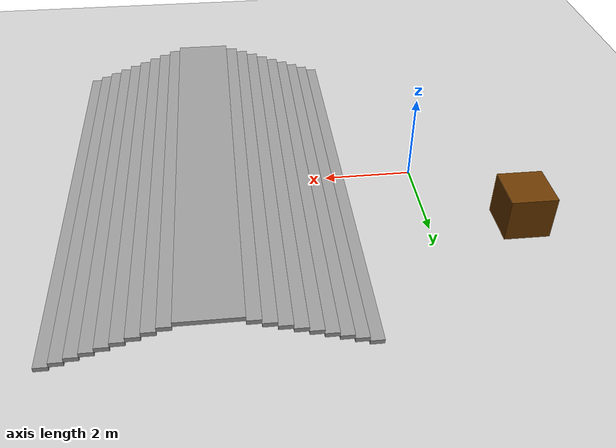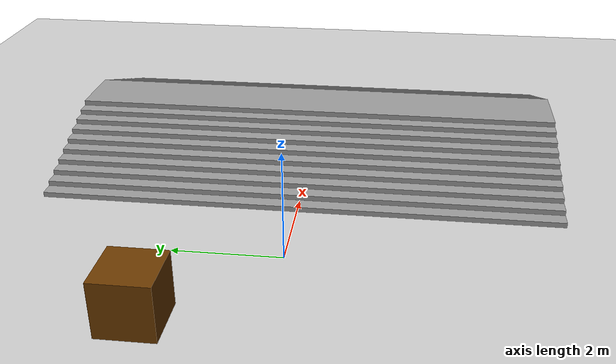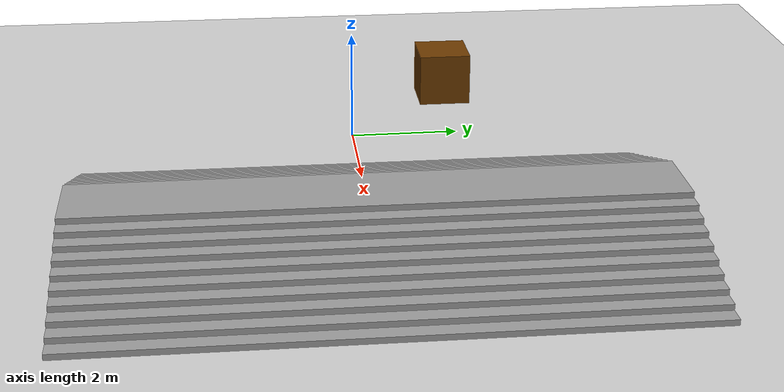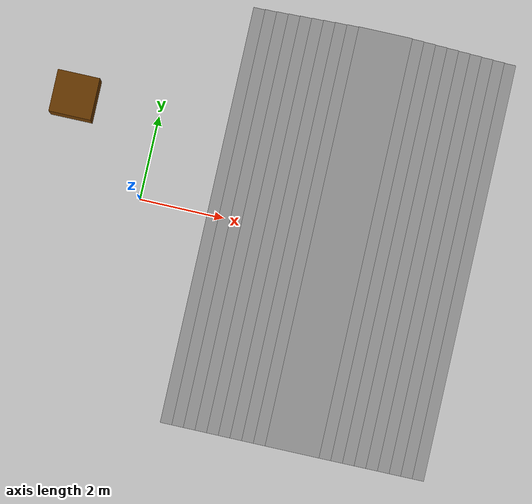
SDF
<?xml version="1.0" ?>
<sdf version="1.5">
    <world name="default">

        <physics type="ode">
        <max_step_size>0.0002</max_step_size>
        <real_time_factor>1</real_time_factor>
        <real_time_update_rate>5000</real_time_update_rate>
        <gravity>0 0 -9.81</gravity>
            <ode>
                <solver>
                <type>quick</type>
                <iters>50</iters>
                <sor>1.3</sor>
                </solver>
                <constraints>
                <cfm>0.0</cfm>
                <erp>0.2</erp>
                <contact_max_correcting_vel>10.0</contact_max_correcting_vel>
                <contact_surface_layer>0.001</contact_surface_layer>
                </constraints>
            </ode>
        </physics>

        <scene>
        <sky>
            <clouds>
                <speed>12</speed>
            </clouds>
        </sky>
        </scene>
        <!-- A global light source -->
        <include>
            <uri>model://sun</uri>
        </include>
        <!-- A ground plane -->
        <include>
            <uri>model://ground_plane</uri>
        </include>
        <!-- environment blocks, obstacles or stairs -->
        <model name="static_environment">
        <static>true</static>
            <link name="static_box">
                <pose>-2 2 0.5 0 0 0</pose>
                <collision name="static_box_collision">
                    <geometry>
                        <box>
                            <size>1 1 1</size>
                        </box>
                    </geometry>
                </collision>
                <visual name="static_box_visual">
                    <geometry>
                        <box>
                            <size>1 1 1</size>
                        </box>
                    </geometry>
                    <material>
                        <ambient>0.2 0.2 0.2 1.0</ambient>
                        <diffuse>.421 0.225 0.0 1.0</diffuse>
                    </material>
                </visual>
            </link>

            <link name='Stairs'>
                <pose>3 0 0 0 0 0</pose>
                <scale>1 1 1</scale>

                <visual name='Stairs_Visual_0'>
                    <pose>-1.26 -0 0.05 0 -0 1.5708</pose>
                    <geometry><box><size>10 0.28 0.10</size></box></geometry>
                    <material><script><uri>file://media/materials/scripts/gazebo.material</uri><name>Gazebo/Grey</name></script></material>
                </visual>
                <collision name='Stairs_Collision_0'>
                    <pose>-1.26 -0 0.05 0 -0 1.5708</pose>
                    <geometry><box><size>10 0.28 0.10</size></box></geometry>
                    <surface><friction><ode><mu>2.0</mu><mu2>2.0</mu2></ode></friction></surface>
                </collision>

                <visual name='Stairs_Visual_1'>
                    <pose>-0.98 -0 0.15 0 -0 1.5708</pose>
                    <geometry><box><size>10 0.28 0.10</size></box></geometry>
                    <material><script><uri>file://media/materials/scripts/gazebo.material</uri><name>Gazebo/Grey</name></script></material>
                </visual>
                <collision name='Stairs_Collision_1'>
                    <pose>-0.98 -0 0.15 0 -0 1.5708</pose>
                    <geometry><box><size>10 0.28 0.10</size></box></geometry>
                    <surface><friction><ode><mu>2.0</mu><mu2>2.0</mu2></ode></friction></surface>
                </collision>

                <visual name='Stairs_Visual_2'>
                    <pose>-0.7 -0 0.25 0 -0 1.5708</pose>
                    <geometry><box><size>10 0.28 0.10</size></box></geometry>
                    <material><script><uri>file://media/materials/scripts/gazebo.material</uri><name>Gazebo/Grey</name></script></material>
                </visual>
                <collision name='Stairs_Collision_2'>
                    <pose>-0.7 -0 0.25 0 -0 1.5708</pose>
                    <geometry><box><size>10 0.28 0.10</size></box></geometry>
                    <surface><friction><ode><mu>2.0</mu><mu2>2.0</mu2></ode></friction></surface>
                </collision>

                <visual name='Stairs_Visual_3'>
                    <pose>-0.42 -0 0.35 0 -0 1.5708</pose>
                    <geometry><box><size>10 0.28 0.10</size></box></geometry>
                    <material><script><uri>file://media/materials/scripts/gazebo.material</uri><name>Gazebo/Grey</name></script></material>
                </visual>
                <collision name='Stairs_Collision_3'>
                    <pose>-0.42 -0 0.35 0 -0 1.5708</pose>
                    <geometry><box><size>10 0.28 0.10</size></box></geometry>
                    <surface><friction><ode><mu>2.0</mu><mu2>2.0</mu2></ode></friction></surface>
                </collision>

                <visual name='Stairs_Visual_4'>
                    <pose>-0.14 -0 0.45 0 -0 1.5708</pose>
                    <geometry><box><size>10 0.28 0.10</size></box></geometry>
                    <material><script><uri>file://media/materials/scripts/gazebo.material</uri><name>Gazebo/Grey</name></script></material>
                </visual>
                <collision name='Stairs_Collision_4'>
                    <pose>-0.14 -0 0.45 0 -0 1.5708</pose>
                    <geometry><box><size>10 0.28 0.10</size></box></geometry>
                    <surface><friction><ode><mu>2.0</mu><mu2>2.0</mu2></ode></friction></surface>
                </collision>

                <visual name='Stairs_Visual_5'>
                    <pose>0.14 0 0.55 0 -0 1.5708</pose>
                    <geometry><box><size>10 0.28 0.10</size></box></geometry>
                    <material><script><uri>file://media/materials/scripts/gazebo.material</uri><name>Gazebo/Grey</name></script></material>
                </visual>
                <collision name='Stairs_Collision_5'>
                    <pose>0.14 0 0.55 0 -0 1.5708</pose>
                    <geometry><box><size>10 0.28 0.10</size></box></geometry>
                    <surface><friction><ode><mu>2.0</mu><mu2>2.0</mu2></ode></friction></surface>
                </collision>

                <visual name='Stairs_Visual_6'>
                    <pose>0.42 0 0.65 0 -0 1.5708</pose>
                    <geometry><box><size>10 0.28 0.10</size></box></geometry>
                    <material><script><uri>file://media/materials/scripts/gazebo.material</uri><name>Gazebo/Grey</name></script></material>
                </visual>
                <collision name='Stairs_Collision_6'>
                    <pose>0.42 0 0.65 0 -0 1.5708</pose>
                    <geometry><box><size>10 0.28 0.10</size></box></geometry>
                    <surface><friction><ode><mu>2.0</mu><mu2>2.0</mu2></ode></friction></surface>
                </collision>

                <visual name='Stairs_Visual_7'>
                    <pose>0.7 0 0.75 0 -0 1.5708</pose>
                    <geometry><box><size>10 0.28 0.10</size></box></geometry>
                    <material><script><uri>file://media/materials/scripts/gazebo.material</uri><name>Gazebo/Grey</name></script></material>
                </visual>
                <collision name='Stairs_Collision_7'>
                    <pose>0.7 0 0.75 0 -0 1.5708</pose>
                    <geometry><box><size>10 0.28 0.10</size></box></geometry>
                    <surface><friction><ode><mu>2.0</mu><mu2>2.0</mu2></ode></friction></surface>
                </collision>

                <visual name='Stairs_Visual_8'>
                    <pose>0.98 0 0.85 0 -0 1.5708</pose>
                    <geometry><box><size>10 0.28 0.10</size></box></geometry>
                    <material><script><uri>file://media/materials/scripts/gazebo.material</uri><name>Gazebo/Grey</name></script></material>
                </visual>
                <collision name='Stairs_Collision_8'>
                    <pose>0.98 0 0.85 0 -0 1.5708</pose>
                    <geometry><box><size>10 0.28 0.10</size></box></geometry>
                    <surface><friction><ode><mu>2.0</mu><mu2>2.0</mu2></ode></friction></surface>
                </collision>

                <visual name='Stairs_Visual_8'>
                    <pose>0.98 0 0.85 0 -0 1.5708</pose>
                    <geometry><box><size>10 0.28 0.10</size></box></geometry>
                    <material><script><uri>file://media/materials/scripts/gazebo.material</uri><name>Gazebo/Grey</name></script></material>
                </visual>
                <collision name='Stairs_Collision_8'>
                    <pose>0.98 0 0.85 0 -0 1.5708</pose>
                    <geometry><box><size>10 0.28 0.10</size></box></geometry>
                    <surface><friction><ode><mu>2.0</mu><mu2>2.0</mu2></ode></friction></surface>
                </collision>

                <visual name='Stairs_Visual_9'>
                    <pose>1.76 0 0.95 0 -0 1.5708</pose>
                    <geometry><box><size>10 1.28 0.10</size></box></geometry>
                    <material><script><uri>file://media/materials/scripts/gazebo.material</uri><name>Gazebo/Grey</name></script></material>
                </visual>
                <collision name='Stairs_Collision_9'>
                    <pose>1.76 0 0.95 0 -0 1.5708</pose>
                    <geometry><box><size>10 1.28 0.10</size></box></geometry>
                    <surface><friction><ode><mu>2.0</mu><mu2>2.0</mu2></ode></friction></surface>
                </collision>

                <visual name='Stairs_Down_Visual_0'>
                    <pose>2.54 0 0.85 0 -0 1.5708</pose>
                    <geometry><box><size>10 0.28 0.10</size></box></geometry>
                    <material><script><uri>file://media/materials/scripts/gazebo.material</uri><name>Gazebo/Grey</name></script></material>
                </visual>
                <collision name='Stairs_Down_Collision_0'>
                    <pose>2.54 0 0.85 0 -0 1.5708</pose>
                    <geometry><box><size>10 0.28 0.10</size></box></geometry>
                    <surface><friction><ode><mu>2.0</mu><mu2>2.0</mu2></ode></friction></surface>
                </collision>

                <visual name='Stairs_Down_Visual_1'>
                    <pose>2.82 0 0.75 0 -0 1.5708</pose>
                    <geometry><box><size>10 0.28 0.10</size></box></geometry>
                    <material><script><uri>file://media/materials/scripts/gazebo.material</uri><name>Gazebo/Grey</name></script></material>
                </visual>
                <collision name='Stairs_Down_Collision_1'>
                    <pose>2.82 0 0.75 0 -0 1.5708</pose>
                    <geometry><box><size>10 0.28 0.10</size></box></geometry>
                    <surface><friction><ode><mu>2.0</mu><mu2>2.0</mu2></ode></friction></surface>
                </collision>

                <visual name='Stairs_Down_Visual_2'>
                    <pose>3.10 0 0.65 0 -0 1.5708</pose>
                    <geometry><box><size>10 0.28 0.10</size></box></geometry>
                    <material><script><uri>file://media/materials/scripts/gazebo.material</uri><name>Gazebo/Grey</name></script></material>
                </visual>
                <collision name='Stairs_Down_Collision_2'>
                    <pose>3.10 0 0.65 0 -0 1.5708</pose>
                    <geometry><box><size>10 0.28 0.10</size></box></geometry>
                    <surface><friction><ode><mu>2.0</mu><mu2>2.0</mu2></ode></friction></surface>
                </collision>

                <visual name='Stairs_Down_Visual_3'>
                    <pose>3.38 0 0.55 0 -0 1.5708</pose>
                    <geometry><box><size>10 0.28 0.10</size></box></geometry>
                    <material><script><uri>file://media/materials/scripts/gazebo.material</uri><name>Gazebo/Grey</name></script></material>
                </visual>
                <collision name='Stairs_Down_Collision_3'>
                    <pose>3.38 0 0.55 0 -0 1.5708</pose>
                    <geometry><box><size>10 0.28 0.10</size></box></geometry>
                    <surface><friction><ode><mu>2.0</mu><mu2>2.0</mu2></ode></friction></surface>
                </collision>

                <visual name='Stairs_Down_Visual_4'>
                    <pose>3.66 0 0.45 0 -0 1.5708</pose>
                    <geometry><box><size>10 0.28 0.10</size></box></geometry>
                    <material><script><uri>file://media/materials/scripts/gazebo.material</uri><name>Gazebo/Grey</name></script></material>
                </visual>
                <collision name='Stairs_Down_Collision_4'>
                    <pose>3.66 0 0.45 0 -0 1.5708</pose>
                    <geometry><box><size>10 0.28 0.10</size></box></geometry>
                    <surface><friction><ode><mu>2.0</mu><mu2>2.0</mu2></ode></friction></surface>
                </collision>

                <visual name='Stairs_Down_Visual_5'>
                    <pose>3.94 0 0.35 0 -0 1.5708</pose>
                    <geometry><box><size>10 0.28 0.10</size></box></geometry>
                    <material><script><uri>file://media/materials/scripts/gazebo.material</uri><name>Gazebo/Grey</name></script></material>
                </visual>
                <collision name='Stairs_Down_Collision_5'>
                    <pose>3.94 0 0.35 0 -0 1.5708</pose>
                    <geometry><box><size>10 0.28 0.10</size></box></geometry>
                    <surface><friction><ode><mu>2.0</mu><mu2>2.0</mu2></ode></friction></surface>
                </collision>

                <visual name='Stairs_Down_Visual_6'>
                    <pose>4.22 0 0.25 0 -0 1.5708</pose>
                    <geometry><box><size>10 0.28 0.10</size></box></geometry>
                    <material><script><uri>file://media/materials/scripts/gazebo.material</uri><name>Gazebo/Grey</name></script></material>
                </visual>
                <collision name='Stairs_Down_Collision_6'>
                    <pose>4.22 0 0.25 0 -0 1.5708</pose>
                    <geometry><box><size>10 0.28 0.10</size></box></geometry>
                    <surface><friction><ode><mu>2.0</mu><mu2>2.0</mu2></ode></friction></surface>
                </collision>

                <visual name='Stairs_Down_Visual_7'>
                    <pose>4.50 0 0.15 0 -0 1.5708</pose>
                    <geometry><box><size>10 0.28 0.10</size></box></geometry>
                    <material><script><uri>file://media/materials/scripts/gazebo.material</uri><name>Gazebo/Grey</name></script></material>
                </visual>
                <collision name='Stairs_Down_Collision_7'>
                    <pose>4.50 0 0.15 0 -0 1.5708</pose>
                    <geometry><box><size>10 0.28 0.10</size></box></geometry>
                    <surface><friction><ode><mu>2.0</mu><mu2>2.0</mu2></ode></friction></surface>
                </collision>

                <visual name='Stairs_Down_Visual_8'>
                    <pose>4.78 0 0.05 0 -0 1.5708</pose>
                    <geometry><box><size>10 0.28 0.10</size></box></geometry>
                    <material><script><uri>file://media/materials/scripts/gazebo.material</uri><name>Gazebo/Grey</name></script></material>
                </visual>
                <collision name='Stairs_Down_Collision_8'>
                    <pose>4.78 0 0.05 0 -0 1.5708</pose>
                    <geometry><box><size>10 0.28 0.10</size></box></geometry>
                    <surface><friction><ode><mu>2.0</mu><mu2>2.0</mu2></ode></friction></surface>
                </collision>
            </link>
        </model>
    </world>
</sdf>
